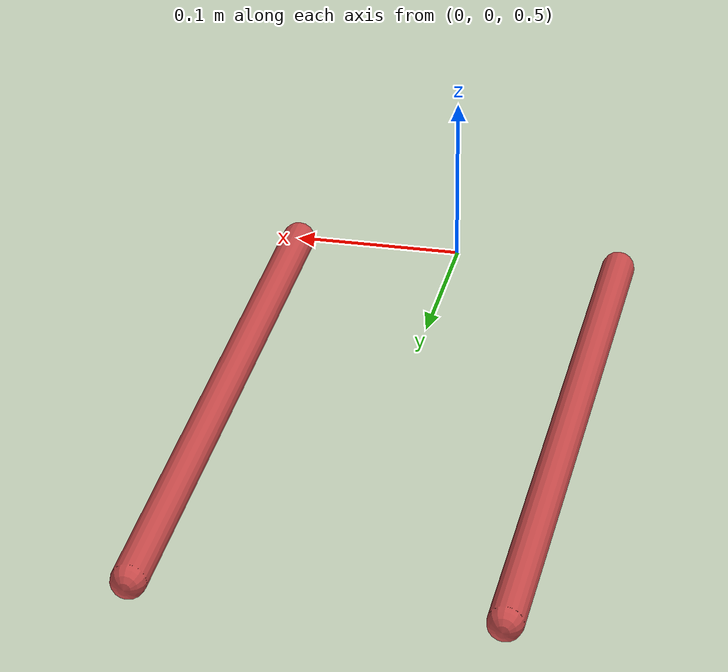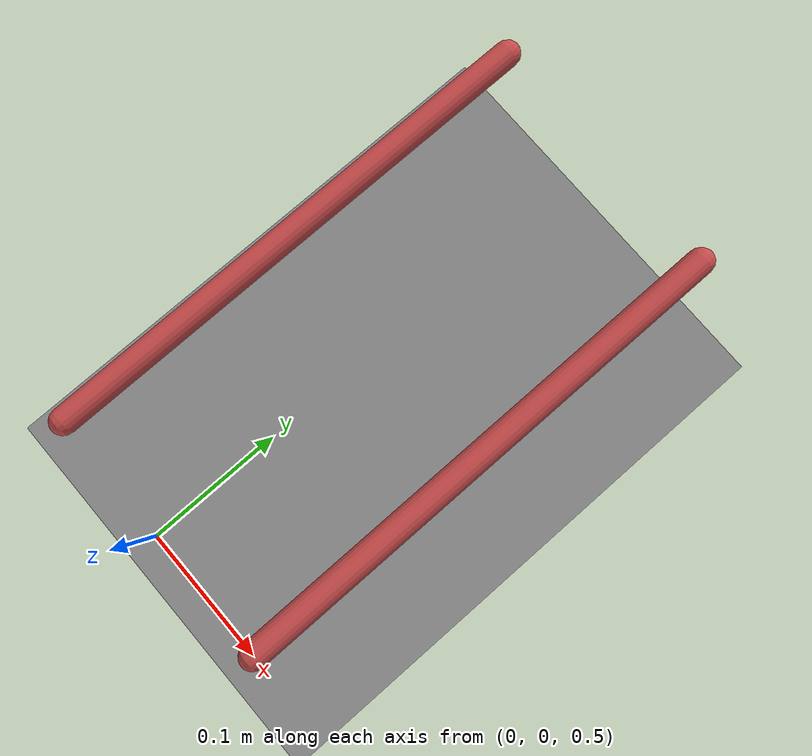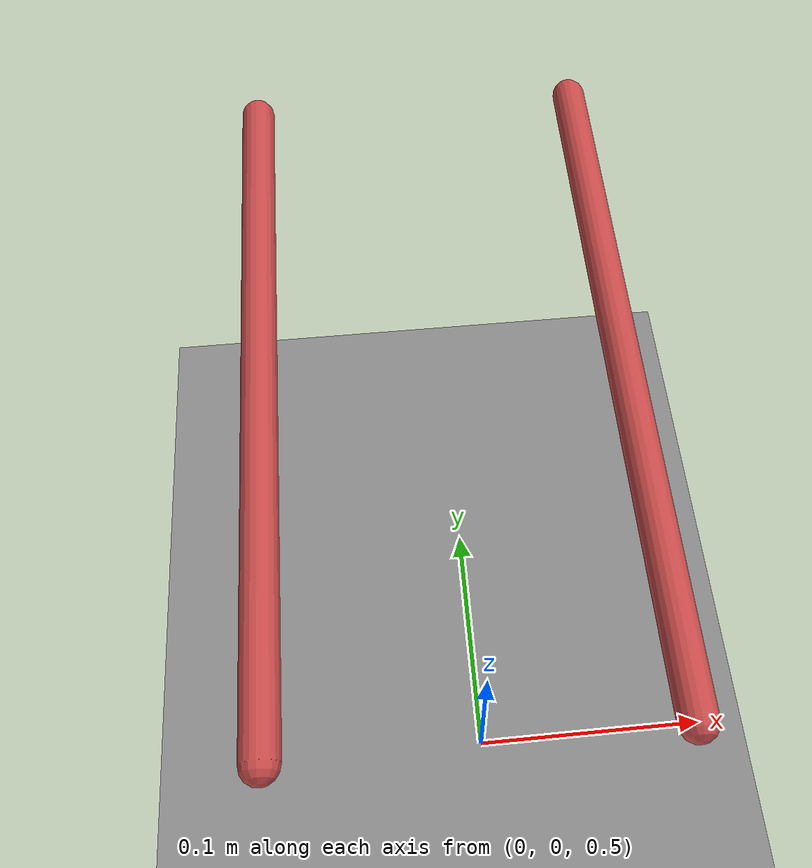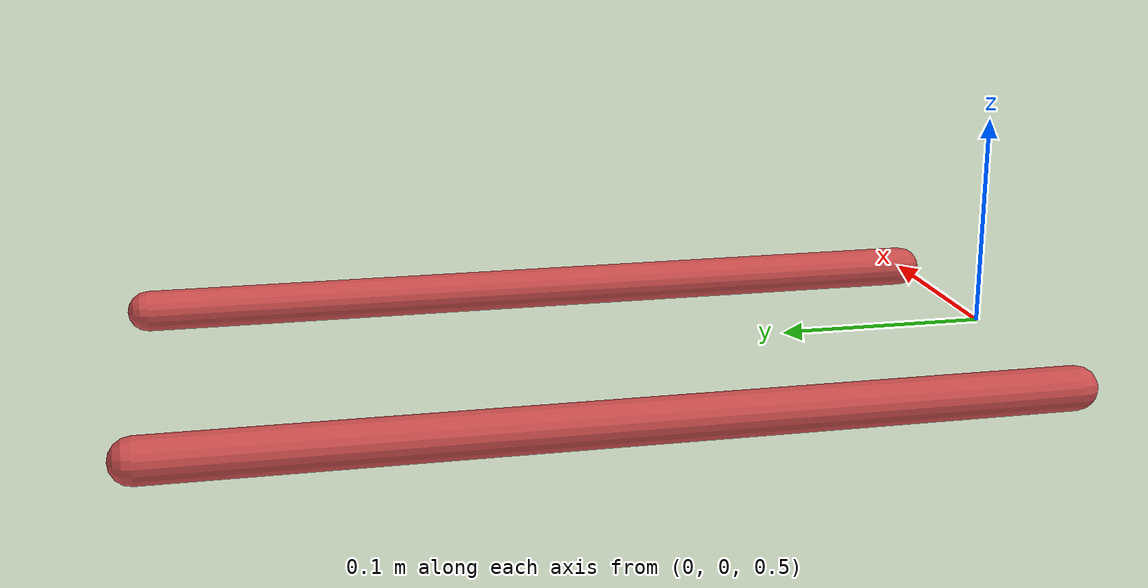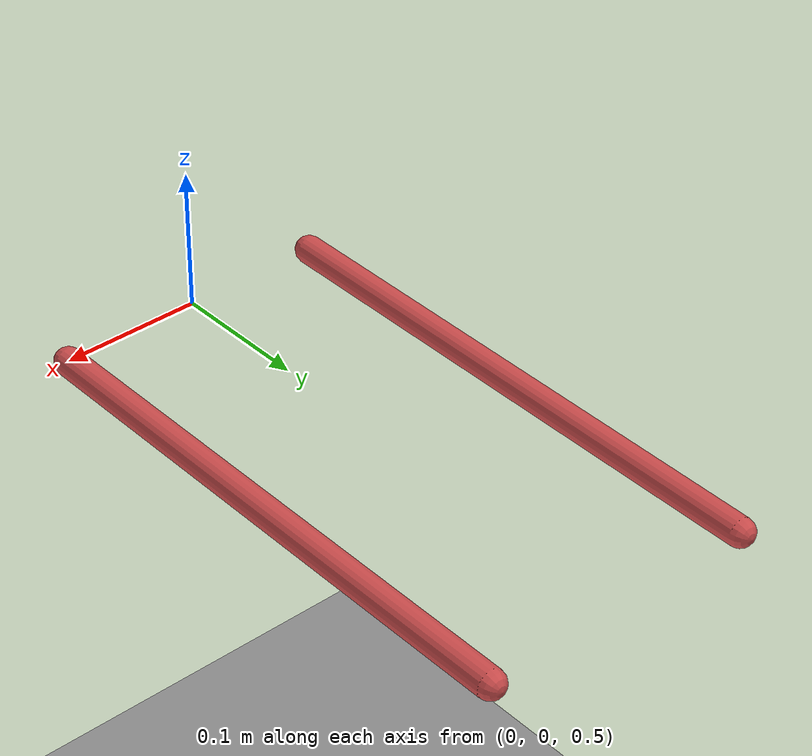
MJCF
<?xml version="1.0"?>
<mujoco model="chopstick_softcube">
  <compiler angle="degree" coordinate="local"/>
  <option timestep="0.001" integrator="RK4"/>

  <asset>
    <!-- 1) Checkered floor texture -->
    <texture
        name="floor_tex"
        type="2d"
        builtin="checker"
        rgb1="0.8 0.8 0.8"
        rgb2="0.3 0.3 0.3"
        width="512"
        height="512"/>
    <material
        name="floor_mat"
        texture="floor_tex"
        texrepeat="20 20"
        texuniform="true"
        reflectance="0.1"/>

    <!-- 2) Skybox gradient background -->
    <texture
        name="skybox_tex"
        type="skybox"
        builtin="gradient"
        rgb1="1 1 1"
        rgb2="0.8 0.9 1"
        width="256"
        height="1536"/>

    <material name="stick_mat" rgba="0.8 0.3 0.3 1"/>
  </asset>

  <default>
    <!-- Give every geom nonzero mass; base friction -->
    <geom density="5"
          friction="0.5 0.1 0.1"/>
  </default>

  <worldbody>
    <geom
        name="floor"
        type="plane"
        size="3 3 0.1"
        material="floor_mat"/>

    <!-- Left chopstick -->
    <body name="left_stick" pos="-0.1 0 0.5" gravcomp="1">
      <joint name="left_slide"  type="slide" axis="1 0 0" range="-0.05 0.05"/>
      <joint name="left_lift"  type="slide" axis="0 0 1" range="-0.5 0.5"/>
      <geom name="left_stick_geom" type="capsule" fromto="0 0 0 0 0.4 0" size="0.01" material="stick_mat"
            solref="0.01 1" solimp="0.9 0.95 0.001" margin="0.005" priority="1"/>
    </body>

    <!-- Right chopstick -->
    <body name="right_stick" pos="0.1 0 0.5" gravcomp="1">
      <joint name="right_slide" type="slide" axis="1 0 0" range="-0.05 0.05"/>
      <joint name="right_lift" type="slide" axis="0 0 1" range="-0.5 0.5"/>
      <geom name="right_stick_geom" type="capsule" fromto="0 0 0 0 0.4 0" size="0.01" material="stick_mat"
            solref="0.01 1" solimp="0.9 0.95 0.001" margin="0.005" priority="1"/>
    </body>

  </worldbody>

  <actuator>
    <motor joint="left_slide"  ctrlrange="-1 1" gear="10"/>
    <motor joint="right_slide" ctrlrange="-1 1" gear="10"/>
    <motor joint="left_lift"  ctrlrange="-1 1" gear="10"/>
    <motor joint="right_lift" ctrlrange="-1 1" gear="10"/>
  </actuator>
</mujoco>
